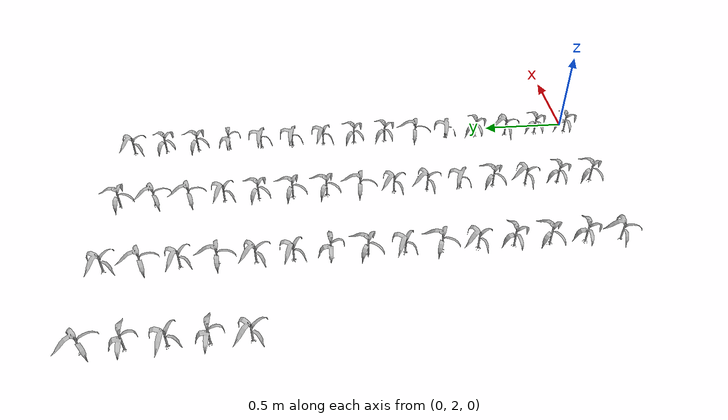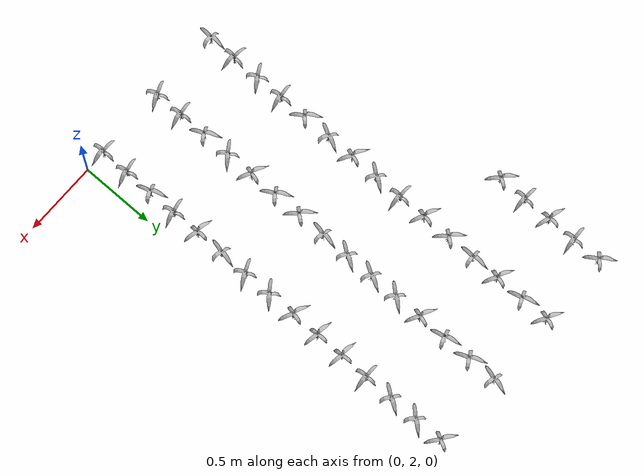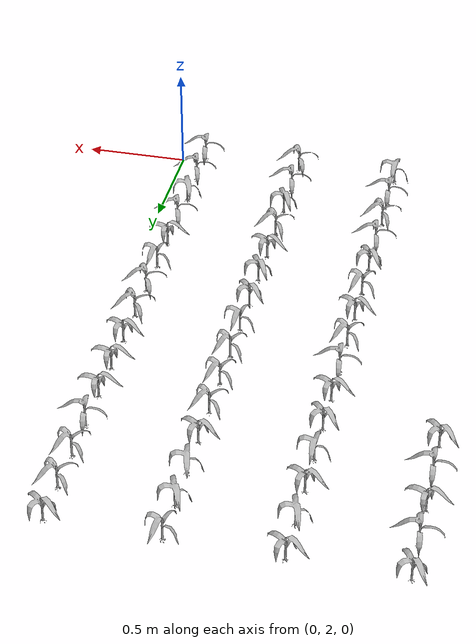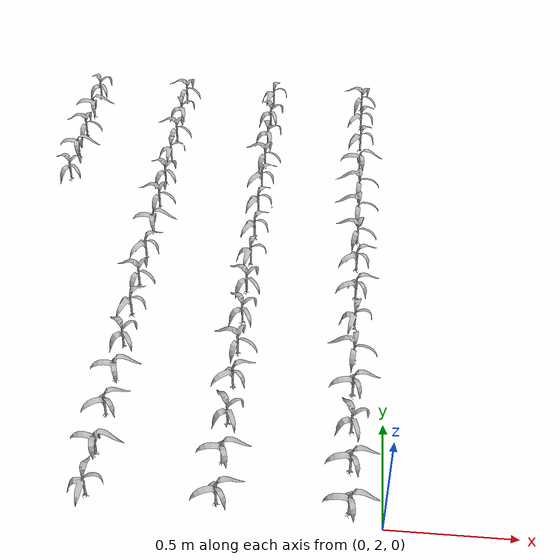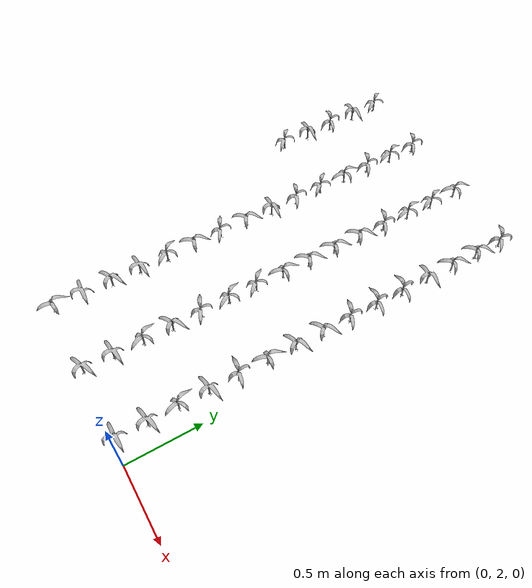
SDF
<sdf version="1.7">
 <world name="default">
  <model name="maize_-1.6134747127982658_3.9750000000000005">
   <static>1</static>
   <link name="link">
    <inertial>
     <mass>0.2</mass>
     <inertia>
      <ixx>0.166667</ixx>
      <ixy>0</ixy>
      <ixz>0</ixz>
      <iyy>0.166667</iyy>
      <iyz>0</iyz>
      <izz>0.166667</izz>
     </inertia>
    </inertial>
    <collision name="collision">
     <geometry><mesh><uri>model://corn_3/meshes/corn.dae</uri><scale>0.25 0.25 0.25</scale></mesh></geometry>
     <surface>
      <friction><ode><mu>0</mu><mu2>0</mu2></ode></friction>
      <contact><ode><kp>0</kp><kd>0</kd><max_vel>0</max_vel><min_depth>0.002</min_depth></ode></contact>
     </surface>
    </collision>
    <visual name="visual">
     <geometry><mesh><uri>model://corn_3/meshes/corn.dae</uri><scale>0.25 0.25 0.25</scale></mesh></geometry>
    </visual>
    <velocity_decay><linear>0</linear><angular>0</angular></velocity_decay>
   </link>
   <pose>-1.61347 3.975 0.05 0 -0 2.44939</pose>
  </model>
  <model name="maize_-1.6134747127982658_4.170000000000001">
   <static>1</static>
   <link name="link">
    <inertial>
     <mass>0.2</mass>
     <inertia>
      <ixx>0.166667</ixx>
      <ixy>0</ixy>
      <ixz>0</ixz>
      <iyy>0.166667</iyy>
      <iyz>0</iyz>
      <izz>0.166667</izz>
     </inertia>
    </inertial>
    <collision name="collision">
     <geometry><mesh><uri>model://corn_3/meshes/corn.dae</uri><scale>0.25 0.25 0.25</scale></mesh></geometry>
     <surface>
      <friction><ode><mu>0</mu><mu2>0</mu2></ode></friction>
      <contact><ode><kp>0</kp><kd>0</kd><max_vel>0</max_vel><min_depth>0.002</min_depth></ode></contact>
     </surface>
    </collision>
    <visual name="visual">
     <geometry><mesh><uri>model://corn_3/meshes/corn.dae</uri><scale>0.25 0.25 0.25</scale></mesh></geometry>
    </visual>
    <velocity_decay><linear>0</linear><angular>0</angular></velocity_decay>
   </link>
   <pose>-1.61347 4.17 0.05 0 -0 0.04831</pose>
  </model>
  <model name="maize_-1.6134747127982658_4.365000000000001">
   <static>1</static>
   <link name="link">
    <inertial>
     <mass>0.2</mass>
     <inertia>
      <ixx>0.166667</ixx>
      <ixy>0</ixy>
      <ixz>0</ixz>
      <iyy>0.166667</iyy>
      <iyz>0</iyz>
      <izz>0.166667</izz>
     </inertia>
    </inertial>
    <collision name="collision">
     <geometry><mesh><uri>model://corn_3/meshes/corn.dae</uri><scale>0.25 0.25 0.25</scale></mesh></geometry>
     <surface>
      <friction><ode><mu>0</mu><mu2>0</mu2></ode></friction>
      <contact><ode><kp>0</kp><kd>0</kd><max_vel>0</max_vel><min_depth>0.002</min_depth></ode></contact>
     </surface>
    </collision>
    <visual name="visual">
     <geometry><mesh><uri>model://corn_3/meshes/corn.dae</uri><scale>0.25 0.25 0.25</scale></mesh></geometry>
    </visual>
    <velocity_decay><linear>0</linear><angular>0</angular></velocity_decay>
   </link>
   <pose>-1.61347 4.365 0.05 0 -0 2.92814</pose>
  </model>
  <model name="maize_-1.6134747127982658_4.56">
   <static>1</static>
   <link name="link">
    <inertial>
     <mass>0.2</mass>
     <inertia>
      <ixx>0.166667</ixx>
      <ixy>0</ixy>
      <ixz>0</ixz>
      <iyy>0.166667</iyy>
      <iyz>0</iyz>
      <izz>0.166667</izz>
     </inertia>
    </inertial>
    <collision name="collision">
     <geometry><mesh><uri>model://corn_3/meshes/corn.dae</uri><scale>0.25 0.25 0.25</scale></mesh></geometry>
     <surface>
      <friction><ode><mu>0</mu><mu2>0</mu2></ode></friction>
      <contact><ode><kp>0</kp><kd>0</kd><max_vel>0</max_vel><min_depth>0.002</min_depth></ode></contact>
     </surface>
    </collision>
    <visual name="visual">
     <geometry><mesh><uri>model://corn_3/meshes/corn.dae</uri><scale>0.25 0.25 0.25</scale></mesh></geometry>
    </visual>
    <velocity_decay><linear>0</linear><angular>0</angular></velocity_decay>
   </link>
   <pose>-1.61347 4.56 0.05 0 -0 0.131172</pose>
  </model>
  <model name="maize_-1.6134747127982658_4.755">
   <static>1</static>
   <link name="link">
    <inertial>
     <mass>0.2</mass>
     <inertia>
      <ixx>0.166667</ixx>
      <ixy>0</ixy>
      <ixz>0</ixz>
      <iyy>0.166667</iyy>
      <iyz>0</iyz>
      <izz>0.166667</izz>
     </inertia>
    </inertial>
    <collision name="collision">
     <geometry><mesh><uri>model://corn_3/meshes/corn.dae</uri><scale>0.25 0.25 0.25</scale></mesh></geometry>
     <surface>
      <friction><ode><mu>0</mu><mu2>0</mu2></ode></friction>
      <contact><ode><kp>0</kp><kd>0</kd><max_vel>0</max_vel><min_depth>0.002</min_depth></ode></contact>
     </surface>
    </collision>
    <visual name="visual">
     <geometry><mesh><uri>model://corn_3/meshes/corn.dae</uri><scale>0.25 0.25 0.25</scale></mesh></geometry>
    </visual>
    <velocity_decay><linear>0</linear><angular>0</angular></velocity_decay>
   </link>
   <pose>-1.61347 4.755 0.05 0 -0 2.22805</pose>
  </model>
  <model name="maize_-1.1183337078909452_2.0250000000000004">
   <static>1</static>
   <link name="link">
    <inertial>
     <mass>0.2</mass>
     <inertia>
      <ixx>0.166667</ixx>
      <ixy>0</ixy>
      <ixz>0</ixz>
      <iyy>0.166667</iyy>
      <iyz>0</iyz>
      <izz>0.166667</izz>
     </inertia>
    </inertial>
    <collision name="collision">
     <geometry><mesh><uri>model://corn_3/meshes/corn.dae</uri><scale>0.25 0.25 0.25</scale></mesh></geometry>
     <surface>
      <friction><ode><mu>0</mu><mu2>0</mu2></ode></friction>
      <contact><ode><kp>0</kp><kd>0</kd><max_vel>0</max_vel><min_depth>0.002</min_depth></ode></contact>
     </surface>
    </collision>
    <visual name="visual">
     <geometry><mesh><uri>model://corn_3/meshes/corn.dae</uri><scale>0.25 0.25 0.25</scale></mesh></geometry>
    </visual>
    <velocity_decay><linear>0</linear><angular>0</angular></velocity_decay>
   </link>
   <pose>-1.11833 2.025 0.05 0 -0 1.59662</pose>
  </model>
  <model name="maize_-1.1183337078909452_2.2200000000000006">
   <static>1</static>
   <link name="link">
    <inertial>
     <mass>0.2</mass>
     <inertia>
      <ixx>0.166667</ixx>
      <ixy>0</ixy>
      <ixz>0</ixz>
      <iyy>0.166667</iyy>
      <iyz>0</iyz>
      <izz>0.166667</izz>
     </inertia>
    </inertial>
    <collision name="collision">
     <geometry><mesh><uri>model://corn_3/meshes/corn.dae</uri><scale>0.25 0.25 0.25</scale></mesh></geometry>
     <surface>
      <friction><ode><mu>0</mu><mu2>0</mu2></ode></friction>
      <contact><ode><kp>0</kp><kd>0</kd><max_vel>0</max_vel><min_depth>0.002</min_depth></ode></contact>
     </surface>
    </collision>
    <visual name="visual">
     <geometry><mesh><uri>model://corn_3/meshes/corn.dae</uri><scale>0.25 0.25 0.25</scale></mesh></geometry>
    </visual>
    <velocity_decay><linear>0</linear><angular>0</angular></velocity_decay>
   </link>
   <pose>-1.11833 2.22 0.05 0 -0 0.00149</pose>
  </model>
  <model name="maize_-1.1183337078909452_2.415">
   <static>1</static>
   <link name="link">
    <inertial>
     <mass>0.2</mass>
     <inertia>
      <ixx>0.166667</ixx>
      <ixy>0</ixy>
      <ixz>0</ixz>
      <iyy>0.166667</iyy>
      <iyz>0</iyz>
      <izz>0.166667</izz>
     </inertia>
    </inertial>
    <collision name="collision">
     <geometry><mesh><uri>model://corn_3/meshes/corn.dae</uri><scale>0.25 0.25 0.25</scale></mesh></geometry>
     <surface>
      <friction><ode><mu>0</mu><mu2>0</mu2></ode></friction>
      <contact><ode><kp>0</kp><kd>0</kd><max_vel>0</max_vel><min_depth>0.002</min_depth></ode></contact>
     </surface>
    </collision>
    <visual name="visual">
     <geometry><mesh><uri>model://corn_3/meshes/corn.dae</uri><scale>0.25 0.25 0.25</scale></mesh></geometry>
    </visual>
    <velocity_decay><linear>0</linear><angular>0</angular></velocity_decay>
   </link>
   <pose>-1.11833 2.415 0.05 0 -0 0.624737</pose>
  </model>
  <model name="maize_-1.1183337078909452_2.6100000000000003">
   <static>1</static>
   <link name="link">
    <inertial>
     <mass>0.2</mass>
     <inertia>
      <ixx>0.166667</ixx>
      <ixy>0</ixy>
      <ixz>0</ixz>
      <iyy>0.166667</iyy>
      <iyz>0</iyz>
      <izz>0.166667</izz>
     </inertia>
    </inertial>
    <collision name="collision">
     <geometry><mesh><uri>model://corn_3/meshes/corn.dae</uri><scale>0.25 0.25 0.25</scale></mesh></geometry>
     <surface>
      <friction><ode><mu>0</mu><mu2>0</mu2></ode></friction>
      <contact><ode><kp>0</kp><kd>0</kd><max_vel>0</max_vel><min_depth>0.002</min_depth></ode></contact>
     </surface>
    </collision>
    <visual name="visual">
     <geometry><mesh><uri>model://corn_3/meshes/corn.dae</uri><scale>0.25 0.25 0.25</scale></mesh></geometry>
    </visual>
    <velocity_decay><linear>0</linear><angular>0</angular></velocity_decay>
   </link>
   <pose>-1.11833 2.61 0.05 0 -0 0.20948</pose>
  </model>
  <model name="maize_-1.1183337078909452_2.8050000000000006">
   <static>1</static>
   <link name="link">
    <inertial>
     <mass>0.2</mass>
     <inertia>
      <ixx>0.166667</ixx>
      <ixy>0</ixy>
      <ixz>0</ixz>
      <iyy>0.166667</iyy>
      <iyz>0</iyz>
      <izz>0.166667</izz>
     </inertia>
    </inertial>
    <collision name="collision">
     <geometry><mesh><uri>model://corn_3/meshes/corn.dae</uri><scale>0.25 0.25 0.25</scale></mesh></geometry>
     <surface>
      <friction><ode><mu>0</mu><mu2>0</mu2></ode></friction>
      <contact><ode><kp>0</kp><kd>0</kd><max_vel>0</max_vel><min_depth>0.002</min_depth></ode></contact>
     </surface>
    </collision>
    <visual name="visual">
     <geometry><mesh><uri>model://corn_3/meshes/corn.dae</uri><scale>0.25 0.25 0.25</scale></mesh></geometry>
    </visual>
    <velocity_decay><linear>0</linear><angular>0</angular></velocity_decay>
   </link>
   <pose>-1.11833 2.805 0.05 0 -0 2.25345</pose>
  </model>
  <model name="maize_-1.1183337078909452_3.000000000000001">
   <static>1</static>
   <link name="link">
    <inertial>
     <mass>0.2</mass>
     <inertia>
      <ixx>0.166667</ixx>
      <ixy>0</ixy>
      <ixz>0</ixz>
      <iyy>0.166667</iyy>
      <iyz>0</iyz>
      <izz>0.166667</izz>
     </inertia>
    </inertial>
    <collision name="collision">
     <geometry><mesh><uri>model://corn_3/meshes/corn.dae</uri><scale>0.25 0.25 0.25</scale></mesh></geometry>
     <surface>
      <friction><ode><mu>0</mu><mu2>0</mu2></ode></friction>
      <contact><ode><kp>0</kp><kd>0</kd><max_vel>0</max_vel><min_depth>0.002</min_depth></ode></contact>
     </surface>
    </collision>
    <visual name="visual">
     <geometry><mesh><uri>model://corn_3/meshes/corn.dae</uri><scale>0.25 0.25 0.25</scale></mesh></geometry>
    </visual>
    <velocity_decay><linear>0</linear><angular>0</angular></velocity_decay>
   </link>
   <pose>-1.11833 3 0.05 0 -0 1.17662</pose>
  </model>
  <model name="maize_-1.1183337078909452_3.1950000000000003">
   <static>1</static>
   <link name="link">
    <inertial>
     <mass>0.2</mass>
     <inertia>
      <ixx>0.166667</ixx>
      <ixy>0</ixy>
      <ixz>0</ixz>
      <iyy>0.166667</iyy>
      <iyz>0</iyz>
      <izz>0.166667</izz>
     </inertia>
    </inertial>
    <collision name="collision">
     <geometry><mesh><uri>model://corn_3/meshes/corn.dae</uri><scale>0.25 0.25 0.25</scale></mesh></geometry>
     <surface>
      <friction><ode><mu>0</mu><mu2>0</mu2></ode></friction>
      <contact><ode><kp>0</kp><kd>0</kd><max_vel>0</max_vel><min_depth>0.002</min_depth></ode></contact>
     </surface>
    </collision>
    <visual name="visual">
     <geometry><mesh><uri>model://corn_3/meshes/corn.dae</uri><scale>0.25 0.25 0.25</scale></mesh></geometry>
    </visual>
    <velocity_decay><linear>0</linear><angular>0</angular></velocity_decay>
   </link>
   <pose>-1.11833 3.195 0.05 0 -0 2.7067</pose>
  </model>
  <model name="maize_-1.1183337078909452_3.3899999999999997">
   <static>1</static>
   <link name="link">
    <inertial>
     <mass>0.2</mass>
     <inertia>
      <ixx>0.166667</ixx>
      <ixy>0</ixy>
      <ixz>0</ixz>
      <iyy>0.166667</iyy>
      <iyz>0</iyz>
      <izz>0.166667</izz>
     </inertia>
    </inertial>
    <collision name="collision">
     <geometry><mesh><uri>model://corn_3/meshes/corn.dae</uri><scale>0.25 0.25 0.25</scale></mesh></geometry>
     <surface>
      <friction><ode><mu>0</mu><mu2>0</mu2></ode></friction>
      <contact><ode><kp>0</kp><kd>0</kd><max_vel>0</max_vel><min_depth>0.002</min_depth></ode></contact>
     </surface>
    </collision>
    <visual name="visual">
     <geometry><mesh><uri>model://corn_3/meshes/corn.dae</uri><scale>0.25 0.25 0.25</scale></mesh></geometry>
    </visual>
    <velocity_decay><linear>0</linear><angular>0</angular></velocity_decay>
   </link>
   <pose>-1.11833 3.39 0.05 0 -0 1.01007</pose>
  </model>
  <model name="maize_-1.1183337078909452_3.585">
   <static>1</static>
   <link name="link">
    <inertial>
     <mass>0.2</mass>
     <inertia>
      <ixx>0.166667</ixx>
      <ixy>0</ixy>
      <ixz>0</ixz>
      <iyy>0.166667</iyy>
      <iyz>0</iyz>
      <izz>0.166667</izz>
     </inertia>
    </inertial>
    <collision name="collision">
     <geometry><mesh><uri>model://corn_3/meshes/corn.dae</uri><scale>0.25 0.25 0.25</scale></mesh></geometry>
     <surface>
      <friction><ode><mu>0</mu><mu2>0</mu2></ode></friction>
      <contact><ode><kp>0</kp><kd>0</kd><max_vel>0</max_vel><min_depth>0.002</min_depth></ode></contact>
     </surface>
    </collision>
    <visual name="visual">
     <geometry><mesh><uri>model://corn_3/meshes/corn.dae</uri><scale>0.25 0.25 0.25</scale></mesh></geometry>
    </visual>
    <velocity_decay><linear>0</linear><angular>0</angular></velocity_decay>
   </link>
   <pose>-1.11833 3.585 0.05 0 -0 0.078755</pose>
  </model>
  <model name="maize_-1.1183337078909452_3.7800000000000002">
   <static>1</static>
   <link name="link">
    <inertial>
     <mass>0.2</mass>
     <inertia>
      <ixx>0.166667</ixx>
      <ixy>0</ixy>
      <ixz>0</ixz>
      <iyy>0.166667</iyy>
      <iyz>0</iyz>
      <izz>0.166667</izz>
     </inertia>
    </inertial>
    <collision name="collision">
     <geometry><mesh><uri>model://corn_3/meshes/corn.dae</uri><scale>0.25 0.25 0.25</scale></mesh></geometry>
     <surface>
      <friction><ode><mu>0</mu><mu2>0</mu2></ode></friction>
      <contact><ode><kp>0</kp><kd>0</kd><max_vel>0</max_vel><min_depth>0.002</min_depth></ode></contact>
     </surface>
    </collision>
    <visual name="visual">
     <geometry><mesh><uri>model://corn_3/meshes/corn.dae</uri><scale>0.25 0.25 0.25</scale></mesh></geometry>
    </visual>
    <velocity_decay><linear>0</linear><angular>0</angular></velocity_decay>
   </link>
   <pose>-1.11833 3.78 0.05 0 -0 2.78752</pose>
  </model>
  <model name="maize_-1.1183337078909452_3.9750000000000005">
   <static>1</static>
   <link name="link">
    <inertial>
     <mass>0.2</mass>
     <inertia>
      <ixx>0.166667</ixx>
      <ixy>0</ixy>
      <ixz>0</ixz>
      <iyy>0.166667</iyy>
      <iyz>0</iyz>
      <izz>0.166667</izz>
     </inertia>
    </inertial>
    <collision name="collision">
     <geometry><mesh><uri>model://corn_3/meshes/corn.dae</uri><scale>0.25 0.25 0.25</scale></mesh></geometry>
     <surface>
      <friction><ode><mu>0</mu><mu2>0</mu2></ode></friction>
      <contact><ode><kp>0</kp><kd>0</kd><max_vel>0</max_vel><min_depth>0.002</min_depth></ode></contact>
     </surface>
    </collision>
    <visual name="visual">
     <geometry><mesh><uri>model://corn_3/meshes/corn.dae</uri><scale>0.25 0.25 0.25</scale></mesh></geometry>
    </visual>
    <velocity_decay><linear>0</linear><angular>0</angular></velocity_decay>
   </link>
   <pose>-1.11833 3.975 0.05 0 -0 2.39003</pose>
  </model>
  <model name="maize_-1.1183337078909452_4.170000000000001">
   <static>1</static>
   <link name="link">
    <inertial>
     <mass>0.2</mass>
     <inertia>
      <ixx>0.166667</ixx>
      <ixy>0</ixy>
      <ixz>0</ixz>
      <iyy>0.166667</iyy>
      <iyz>0</iyz>
      <izz>0.166667</izz>
     </inertia>
    </inertial>
    <collision name="collision">
     <geometry><mesh><uri>model://corn_3/meshes/corn.dae</uri><scale>0.25 0.25 0.25</scale></mesh></geometry>
     <surface>
      <friction><ode><mu>0</mu><mu2>0</mu2></ode></friction>
      <contact><ode><kp>0</kp><kd>0</kd><max_vel>0</max_vel><min_depth>0.002</min_depth></ode></contact>
     </surface>
    </collision>
    <visual name="visual">
     <geometry><mesh><uri>model://corn_3/meshes/corn.dae</uri><scale>0.25 0.25 0.25</scale></mesh></geometry>
    </visual>
    <velocity_decay><linear>0</linear><angular>0</angular></velocity_decay>
   </link>
   <pose>-1.11833 4.17 0.05 0 -0 1.61946</pose>
  </model>
  <model name="maize_-1.1183337078909452_4.365000000000001">
   <static>1</static>
   <link name="link">
    <inertial>
     <mass>0.2</mass>
     <inertia>
      <ixx>0.166667</ixx>
      <ixy>0</ixy>
      <ixz>0</ixz>
      <iyy>0.166667</iyy>
      <iyz>0</iyz>
      <izz>0.166667</izz>
     </inertia>
    </inertial>
    <collision name="collision">
     <geometry><mesh><uri>model://corn_3/meshes/corn.dae</uri><scale>0.25 0.25 0.25</scale></mesh></geometry>
     <surface>
      <friction><ode><mu>0</mu><mu2>0</mu2></ode></friction>
      <contact><ode><kp>0</kp><kd>0</kd><max_vel>0</max_vel><min_depth>0.002</min_depth></ode></contact>
     </surface>
    </collision>
    <visual name="visual">
     <geometry><mesh><uri>model://corn_3/meshes/corn.dae</uri><scale>0.25 0.25 0.25</scale></mesh></geometry>
    </visual>
    <velocity_decay><linear>0</linear><angular>0</angular></velocity_decay>
   </link>
   <pose>-1.11833 4.365 0.05 0 -0 2.74053</pose>
  </model>
  <model name="maize_-1.1183337078909452_4.56">
   <static>1</static>
   <link name="link">
    <inertial>
     <mass>0.2</mass>
     <inertia>
      <ixx>0.166667</ixx>
      <ixy>0</ixy>
      <ixz>0</ixz>
      <iyy>0.166667</iyy>
      <iyz>0</iyz>
      <izz>0.166667</izz>
     </inertia>
    </inertial>
    <collision name="collision">
     <geometry><mesh><uri>model://corn_3/meshes/corn.dae</uri><scale>0.25 0.25 0.25</scale></mesh></geometry>
     <surface>
      <friction><ode><mu>0</mu><mu2>0</mu2></ode></friction>
      <contact><ode><kp>0</kp><kd>0</kd><max_vel>0</max_vel><min_depth>0.002</min_depth></ode></contact>
     </surface>
    </collision>
    <visual name="visual">
     <geometry><mesh><uri>model://corn_3/meshes/corn.dae</uri><scale>0.25 0.25 0.25</scale></mesh></geometry>
    </visual>
    <velocity_decay><linear>0</linear><angular>0</angular></velocity_decay>
   </link>
   <pose>-1.11833 4.56 0.05 0 -0 1.91813</pose>
  </model>
  <model name="maize_-1.1183337078909452_4.755">
   <static>1</static>
   <link name="link">
    <inertial>
     <mass>0.2</mass>
     <inertia>
      <ixx>0.166667</ixx>
      <ixy>0</ixy>
      <ixz>0</ixz>
      <iyy>0.166667</iyy>
      <iyz>0</iyz>
      <izz>0.166667</izz>
     </inertia>
    </inertial>
    <collision name="collision">
     <geometry><mesh><uri>model://corn_3/meshes/corn.dae</uri><scale>0.25 0.25 0.25</scale></mesh></geometry>
     <surface>
      <friction><ode><mu>0</mu><mu2>0</mu2></ode></friction>
      <contact><ode><kp>0</kp><kd>0</kd><max_vel>0</max_vel><min_depth>0.002</min_depth></ode></contact>
     </surface>
    </collision>
    <visual name="visual">
     <geometry><mesh><uri>model://corn_3/meshes/corn.dae</uri><scale>0.25 0.25 0.25</scale></mesh></geometry>
    </visual>
    <velocity_decay><linear>0</linear><angular>0</angular></velocity_decay>
   </link>
   <pose>-1.11833 4.755 0.05 0 -0 2.69034</pose>
  </model>
  <model name="maize_-0.6239370944114593_2.0250000000000004">
   <static>1</static>
   <link name="link">
    <inertial>
     <mass>0.2</mass>
     <inertia>
      <ixx>0.166667</ixx>
      <ixy>0</ixy>
      <ixz>0</ixz>
      <iyy>0.166667</iyy>
      <iyz>0</iyz>
      <izz>0.166667</izz>
     </inertia>
    </inertial>
    <collision name="collision">
     <geometry><mesh><uri>model://corn_3/meshes/corn.dae</uri><scale>0.25 0.25 0.25</scale></mesh></geometry>
     <surface>
      <friction><ode><mu>0</mu><mu2>0</mu2></ode></friction>
      <contact><ode><kp>0</kp><kd>0</kd><max_vel>0</max_vel><min_depth>0.002</min_depth></ode></contact>
     </surface>
    </collision>
    <visual name="visual">
     <geometry><mesh><uri>model://corn_3/meshes/corn.dae</uri><scale>0.25 0.25 0.25</scale></mesh></geometry>
    </visual>
    <velocity_decay><linear>0</linear><angular>0</angular></velocity_decay>
   </link>
   <pose>-0.623937 2.025 0.05 0 -0 0.490631</pose>
  </model>
  <model name="maize_-0.6239370944114593_2.2200000000000006">
   <static>1</static>
   <link name="link">
    <inertial>
     <mass>0.2</mass>
     <inertia>
      <ixx>0.166667</ixx>
      <ixy>0</ixy>
      <ixz>0</ixz>
      <iyy>0.166667</iyy>
      <iyz>0</iyz>
      <izz>0.166667</izz>
     </inertia>
    </inertial>
    <collision name="collision">
     <geometry><mesh><uri>model://corn_3/meshes/corn.dae</uri><scale>0.25 0.25 0.25</scale></mesh></geometry>
     <surface>
      <friction><ode><mu>0</mu><mu2>0</mu2></ode></friction>
      <contact><ode><kp>0</kp><kd>0</kd><max_vel>0</max_vel><min_depth>0.002</min_depth></ode></contact>
     </surface>
    </collision>
    <visual name="visual">
     <geometry><mesh><uri>model://corn_3/meshes/corn.dae</uri><scale>0.25 0.25 0.25</scale></mesh></geometry>
    </visual>
    <velocity_decay><linear>0</linear><angular>0</angular></velocity_decay>
   </link>
   <pose>-0.623937 2.22 0.05 0 -0 0.224253</pose>
  </model>
  <model name="maize_-0.6239370944114593_2.415">
   <static>1</static>
   <link name="link">
    <inertial>
     <mass>0.2</mass>
     <inertia>
      <ixx>0.166667</ixx>
      <ixy>0</ixy>
      <ixz>0</ixz>
      <iyy>0.166667</iyy>
      <iyz>0</iyz>
      <izz>0.166667</izz>
     </inertia>
    </inertial>
    <collision name="collision">
     <geometry><mesh><uri>model://corn_3/meshes/corn.dae</uri><scale>0.25 0.25 0.25</scale></mesh></geometry>
     <surface>
      <friction><ode><mu>0</mu><mu2>0</mu2></ode></friction>
      <contact><ode><kp>0</kp><kd>0</kd><max_vel>0</max_vel><min_depth>0.002</min_depth></ode></contact>
     </surface>
    </collision>
    <visual name="visual">
     <geometry><mesh><uri>model://corn_3/meshes/corn.dae</uri><scale>0.25 0.25 0.25</scale></mesh></geometry>
    </visual>
    <velocity_decay><linear>0</linear><angular>0</angular></velocity_decay>
   </link>
   <pose>-0.623937 2.415 0.05 0 -0 2.08722</pose>
  </model>
  <model name="maize_-0.6239370944114593_2.6100000000000003">
   <static>1</static>
   <link name="link">
    <inertial>
     <mass>0.2</mass>
     <inertia>
      <ixx>0.166667</ixx>
      <ixy>0</ixy>
      <ixz>0</ixz>
      <iyy>0.166667</iyy>
      <iyz>0</iyz>
      <izz>0.166667</izz>
     </inertia>
    </inertial>
    <collision name="collision">
     <geometry><mesh><uri>model://corn_3/meshes/corn.dae</uri><scale>0.25 0.25 0.25</scale></mesh></geometry>
     <surface>
      <friction><ode><mu>0</mu><mu2>0</mu2></ode></friction>
      <contact><ode><kp>0</kp><kd>0</kd><max_vel>0</max_vel><min_depth>0.002</min_depth></ode></contact>
     </surface>
    </collision>
    <visual name="visual">
     <geometry><mesh><uri>model://corn_3/meshes/corn.dae</uri><scale>0.25 0.25 0.25</scale></mesh></geometry>
    </visual>
    <velocity_decay><linear>0</linear><angular>0</angular></velocity_decay>
   </link>
   <pose>-0.623937 2.61 0.05 0 -0 0.702721</pose>
  </model>
  <model name="maize_-0.6239370944114593_2.8050000000000006">
   <static>1</static>
   <link name="link">
    <inertial>
     <mass>0.2</mass>
     <inertia>
      <ixx>0.166667</ixx>
      <ixy>0</ixy>
      <ixz>0</ixz>
      <iyy>0.166667</iyy>
      <iyz>0</iyz>
      <izz>0.166667</izz>
     </inertia>
    </inertial>
    <collision name="collision">
     <geometry><mesh><uri>model://corn_3/meshes/corn.dae</uri><scale>0.25 0.25 0.25</scale></mesh></geometry>
     <surface>
      <friction><ode><mu>0</mu><mu2>0</mu2></ode></friction>
      <contact><ode><kp>0</kp><kd>0</kd><max_vel>0</max_vel><min_depth>0.002</min_depth></ode></contact>
     </surface>
    </collision>
    <visual name="visual">
     <geometry><mesh><uri>model://corn_3/meshes/corn.dae</uri><scale>0.25 0.25 0.25</scale></mesh></geometry>
    </visual>
    <velocity_decay><linear>0</linear><angular>0</angular></velocity_decay>
   </link>
   <pose>-0.623937 2.805 0.05 0 -0 2.77363</pose>
  </model>
  <model name="maize_-0.6239370944114593_3.000000000000001">
   <static>1</static>
   <link name="link">
    <inertial>
     <mass>0.2</mass>
     <inertia>
      <ixx>0.166667</ixx>
      <ixy>0</ixy>
      <ixz>0</ixz>
      <iyy>0.166667</iyy>
      <iyz>0</iyz>
      <izz>0.166667</izz>
     </inertia>
    </inertial>
    <collision name="collision">
     <geometry><mesh><uri>model://corn_3/meshes/corn.dae</uri><scale>0.25 0.25 0.25</scale></mesh></geometry>
     <surface>
      <friction><ode><mu>0</mu><mu2>0</mu2></ode></friction>
      <contact><ode><kp>0</kp><kd>0</kd><max_vel>0</max_vel><min_depth>0.002</min_depth></ode></contact>
     </surface>
    </collision>
    <visual name="visual">
     <geometry><mesh><uri>model://corn_3/meshes/corn.dae</uri><scale>0.25 0.25 0.25</scale></mesh></geometry>
    </visual>
    <velocity_decay><linear>0</linear><angular>0</angular></velocity_decay>
   </link>
   <pose>-0.623937 3 0.05 0 -0 2.16091</pose>
  </model>
  <model name="maize_-0.6239370944114593_3.1950000000000003">
   <static>1</static>
   <link name="link">
    <inertial>
     <mass>0.2</mass>
     <inertia>
      <ixx>0.166667</ixx>
      <ixy>0</ixy>
      <ixz>0</ixz>
      <iyy>0.166667</iyy>
      <iyz>0</iyz>
      <izz>0.166667</izz>
     </inertia>
    </inertial>
    <collision name="collision">
     <geometry><mesh><uri>model://corn_3/meshes/corn.dae</uri><scale>0.25 0.25 0.25</scale></mesh></geometry>
     <surface>
      <friction><ode><mu>0</mu><mu2>0</mu2></ode></friction>
      <contact><ode><kp>0</kp><kd>0</kd><max_vel>0</max_vel><min_depth>0.002</min_depth></ode></contact>
     </surface>
    </collision>
    <visual name="visual">
     <geometry><mesh><uri>model://corn_3/meshes/corn.dae</uri><scale>0.25 0.25 0.25</scale></mesh></geometry>
    </visual>
    <velocity_decay><linear>0</linear><angular>0</angular></velocity_decay>
   </link>
   <pose>-0.623937 3.195 0.05 0 -0 2.3969</pose>
  </model>
  <model name="maize_-0.6239370944114593_3.3899999999999997">
   <static>1</static>
   <link name="link">
    <inertial>
     <mass>0.2</mass>
     <inertia>
      <ixx>0.166667</ixx>
      <ixy>0</ixy>
      <ixz>0</ixz>
      <iyy>0.166667</iyy>
      <iyz>0</iyz>
      <izz>0.166667</izz>
     </inertia>
    </inertial>
    <collision name="collision">
     <geometry><mesh><uri>model://corn_3/meshes/corn.dae</uri><scale>0.25 0.25 0.25</scale></mesh></geometry>
     <surface>
      <friction><ode><mu>0</mu><mu2>0</mu2></ode></friction>
      <contact><ode><kp>0</kp><kd>0</kd><max_vel>0</max_vel><min_depth>0.002</min_depth></ode></contact>
     </surface>
    </collision>
    <visual name="visual">
     <geometry><mesh><uri>model://corn_3/meshes/corn.dae</uri><scale>0.25 0.25 0.25</scale></mesh></geometry>
    </visual>
    <velocity_decay><linear>0</linear><angular>0</angular></velocity_decay>
   </link>
   <pose>-0.623937 3.39 0.05 0 -0 1.44744</pose>
  </model>
  <model name="maize_-0.6239370944114593_3.585">
   <static>1</static>
   <link name="link">
    <inertial>
     <mass>0.2</mass>
     <inertia>
      <ixx>0.166667</ixx>
      <ixy>0</ixy>
      <ixz>0</ixz>
      <iyy>0.166667</iyy>
      <iyz>0</iyz>
      <izz>0.166667</izz>
     </inertia>
    </inertial>
    <collision name="collision">
     <geometry><mesh><uri>model://corn_3/meshes/corn.dae</uri><scale>0.25 0.25 0.25</scale></mesh></geometry>
     <surface>
      <friction><ode><mu>0</mu><mu2>0</mu2></ode></friction>
      <contact><ode><kp>0</kp><kd>0</kd><max_vel>0</max_vel><min_depth>0.002</min_depth></ode></contact>
     </surface>
    </collision>
    <visual name="visual">
     <geometry><mesh><uri>model://corn_3/meshes/corn.dae</uri><scale>0.25 0.25 0.25</scale></mesh></geometry>
    </visual>
    <velocity_decay><linear>0</linear><angular>0</angular></velocity_decay>
   </link>
   <pose>-0.623937 3.585 0.05 0 -0 1.05499</pose>
  </model>
  <model name="maize_-0.6239370944114593_3.7800000000000002">
   <static>1</static>
   <link name="link">
    <inertial>
     <mass>0.2</mass>
     <inertia>
      <ixx>0.166667</ixx>
      <ixy>0</ixy>
      <ixz>0</ixz>
      <iyy>0.166667</iyy>
      <iyz>0</iyz>
      <izz>0.166667</izz>
     </inertia>
    </inertial>
    <collision name="collision">
     <geometry><mesh><uri>model://corn_3/meshes/corn.dae</uri><scale>0.25 0.25 0.25</scale></mesh></geometry>
     <surface>
      <friction><ode><mu>0</mu><mu2>0</mu2></ode></friction>
      <contact><ode><kp>0</kp><kd>0</kd><max_vel>0</max_vel><min_depth>0.002</min_depth></ode></contact>
     </surface>
    </collision>
    <visual name="visual">
     <geometry><mesh><uri>model://corn_3/meshes/corn.dae</uri><scale>0.25 0.25 0.25</scale></mesh></geometry>
    </visual>
    <velocity_decay><linear>0</linear><angular>0</angular></velocity_decay>
   </link>
   <pose>-0.623937 3.78 0.05 0 -0 1.12821</pose>
  </model>
  <model name="maize_-0.6239370944114593_3.9750000000000005">
   <static>1</static>
   <link name="link">
    <inertial>
     <mass>0.2</mass>
     <inertia>
      <ixx>0.166667</ixx>
      <ixy>0</ixy>
      <ixz>0</ixz>
      <iyy>0.166667</iyy>
      <iyz>0</iyz>
      <izz>0.166667</izz>
     </inertia>
    </inertial>
    <collision name="collision">
     <geometry><mesh><uri>model://corn_3/meshes/corn.dae</uri><scale>0.25 0.25 0.25</scale></mesh></geometry>
     <surface>
      <friction><ode><mu>0</mu><mu2>0</mu2></ode></friction>
      <contact><ode><kp>0</kp><kd>0</kd><max_vel>0</max_vel><min_depth>0.002</min_depth></ode></contact>
     </surface>
    </collision>
    <visual name="visual">
     <geometry><mesh><uri>model://corn_3/meshes/corn.dae</uri><scale>0.25 0.25 0.25</scale></mesh></geometry>
    </visual>
    <velocity_decay><linear>0</linear><angular>0</angular></velocity_decay>
   </link>
   <pose>-0.623937 3.975 0.05 0 -0 0.948451</pose>
  </model>
  <model name="maize_-0.6239370944114593_4.170000000000001">
   <static>1</static>
   <link name="link">
    <inertial>
     <mass>0.2</mass>
     <inertia>
      <ixx>0.166667</ixx>
      <ixy>0</ixy>
      <ixz>0</ixz>
      <iyy>0.166667</iyy>
      <iyz>0</iyz>
      <izz>0.166667</izz>
     </inertia>
    </inertial>
    <collision name="collision">
     <geometry><mesh><uri>model://corn_3/meshes/corn.dae</uri><scale>0.25 0.25 0.25</scale></mesh></geometry>
     <surface>
      <friction><ode><mu>0</mu><mu2>0</mu2></ode></friction>
      <contact><ode><kp>0</kp><kd>0</kd><max_vel>0</max_vel><min_depth>0.002</min_depth></ode></contact>
     </surface>
    </collision>
    <visual name="visual">
     <geometry><mesh><uri>model://corn_3/meshes/corn.dae</uri><scale>0.25 0.25 0.25</scale></mesh></geometry>
    </visual>
    <velocity_decay><linear>0</linear><angular>0</angular></velocity_decay>
   </link>
   <pose>-0.623937 4.17 0.05 0 -0 2.73747</pose>
  </model>
  <model name="maize_-0.6239370944114593_4.365000000000001">
   <static>1</static>
   <link name="link">
    <inertial>
     <mass>0.2</mass>
     <inertia>
      <ixx>0.166667</ixx>
      <ixy>0</ixy>
      <ixz>0</ixz>
      <iyy>0.166667</iyy>
      <iyz>0</iyz>
      <izz>0.166667</izz>
     </inertia>
    </inertial>
    <collision name="collision">
     <geometry><mesh><uri>model://corn_3/meshes/corn.dae</uri><scale>0.25 0.25 0.25</scale></mesh></geometry>
     <surface>
      <friction><ode><mu>0</mu><mu2>0</mu2></ode></friction>
      <contact><ode><kp>0</kp><kd>0</kd><max_vel>0</max_vel><min_depth>0.002</min_depth></ode></contact>
     </surface>
    </collision>
    <visual name="visual">
     <geometry><mesh><uri>model://corn_3/meshes/corn.dae</uri><scale>0.25 0.25 0.25</scale></mesh></geometry>
    </visual>
    <velocity_decay><linear>0</linear><angular>0</angular></velocity_decay>
   </link>
   <pose>-0.623937 4.365 0.05 0 -0 1.86523</pose>
  </model>
  <model name="maize_-0.6239370944114593_4.56">
   <static>1</static>
   <link name="link">
    <inertial>
     <mass>0.2</mass>
     <inertia>
      <ixx>0.166667</ixx>
      <ixy>0</ixy>
      <ixz>0</ixz>
      <iyy>0.166667</iyy>
      <iyz>0</iyz>
      <izz>0.166667</izz>
     </inertia>
    </inertial>
    <collision name="collision">
     <geometry><mesh><uri>model://corn_3/meshes/corn.dae</uri><scale>0.25 0.25 0.25</scale></mesh></geometry>
     <surface>
      <friction><ode><mu>0</mu><mu2>0</mu2></ode></friction>
      <contact><ode><kp>0</kp><kd>0</kd><max_vel>0</max_vel><min_depth>0.002</min_depth></ode></contact>
     </surface>
    </collision>
    <visual name="visual">
     <geometry><mesh><uri>model://corn_3/meshes/corn.dae</uri><scale>0.25 0.25 0.25</scale></mesh></geometry>
    </visual>
    <velocity_decay><linear>0</linear><angular>0</angular></velocity_decay>
   </link>
   <pose>-0.623937 4.56 0.05 0 -0 2.03396</pose>
  </model>
  <model name="maize_-0.6239370944114593_4.755">
   <static>1</static>
   <link name="link">
    <inertial>
     <mass>0.2</mass>
     <inertia>
      <ixx>0.166667</ixx>
      <ixy>0</ixy>
      <ixz>0</ixz>
      <iyy>0.166667</iyy>
      <iyz>0</iyz>
      <izz>0.166667</izz>
     </inertia>
    </inertial>
    <collision name="collision">
     <geometry><mesh><uri>model://corn_3/meshes/corn.dae</uri><scale>0.25 0.25 0.25</scale></mesh></geometry>
     <surface>
      <friction><ode><mu>0</mu><mu2>0</mu2></ode></friction>
      <contact><ode><kp>0</kp><kd>0</kd><max_vel>0</max_vel><min_depth>0.002</min_depth></ode></contact>
     </surface>
    </collision>
    <visual name="visual">
     <geometry><mesh><uri>model://corn_3/meshes/corn.dae</uri><scale>0.25 0.25 0.25</scale></mesh></geometry>
    </visual>
    <velocity_decay><linear>0</linear><angular>0</angular></velocity_decay>
   </link>
   <pose>-0.623937 4.755 0.05 0 -0 1.35657</pose>
  </model>
  <model name="maize_-0.130284034289482_2.0250000000000004">
   <static>1</static>
   <link name="link">
    <inertial>
     <mass>0.2</mass>
     <inertia>
      <ixx>0.166667</ixx>
      <ixy>0</ixy>
      <ixz>0</ixz>
      <iyy>0.166667</iyy>
      <iyz>0</iyz>
      <izz>0.166667</izz>
     </inertia>
    </inertial>
    <collision name="collision">
     <geometry><mesh><uri>model://corn_3/meshes/corn.dae</uri><scale>0.25 0.25 0.25</scale></mesh></geometry>
     <surface>
      <friction><ode><mu>0</mu><mu2>0</mu2></ode></friction>
      <contact><ode><kp>0</kp><kd>0</kd><max_vel>0</max_vel><min_depth>0.002</min_depth></ode></contact>
     </surface>
    </collision>
    <visual name="visual">
     <geometry><mesh><uri>model://corn_3/meshes/corn.dae</uri><scale>0.25 0.25 0.25</scale></mesh></geometry>
    </visual>
    <velocity_decay><linear>0</linear><angular>0</angular></velocity_decay>
   </link>
   <pose>-0.130284 2.025 0.05 0 -0 0.106279</pose>
  </model>
  <model name="maize_-0.130284034289482_2.2200000000000006">
   <static>1</static>
   <link name="link">
    <inertial>
     <mass>0.2</mass>
     <inertia>
      <ixx>0.166667</ixx>
      <ixy>0</ixy>
      <ixz>0</ixz>
      <iyy>0.166667</iyy>
      <iyz>0</iyz>
      <izz>0.166667</izz>
     </inertia>
    </inertial>
    <collision name="collision">
     <geometry><mesh><uri>model://corn_3/meshes/corn.dae</uri><scale>0.25 0.25 0.25</scale></mesh></geometry>
     <surface>
      <friction><ode><mu>0</mu><mu2>0</mu2></ode></friction>
      <contact><ode><kp>0</kp><kd>0</kd><max_vel>0</max_vel><min_depth>0.002</min_depth></ode></contact>
     </surface>
    </collision>
    <visual name="visual">
     <geometry><mesh><uri>model://corn_3/meshes/corn.dae</uri><scale>0.25 0.25 0.25</scale></mesh></geometry>
    </visual>
    <velocity_decay><linear>0</linear><angular>0</angular></velocity_decay>
   </link>
   <pose>-0.130284 2.22 0.05 0 -0 0.301946</pose>
  </model>
  <model name="maize_-0.130284034289482_2.415">
   <static>1</static>
   <link name="link">
    <inertial>
     <mass>0.2</mass>
     <inertia>
      <ixx>0.166667</ixx>
      <ixy>0</ixy>
      <ixz>0</ixz>
      <iyy>0.166667</iyy>
      <iyz>0</iyz>
      <izz>0.166667</izz>
     </inertia>
    </inertial>
    <collision name="collision">
     <geometry><mesh><uri>model://corn_3/meshes/corn.dae</uri><scale>0.25 0.25 0.25</scale></mesh></geometry>
     <surface>
      <friction><ode><mu>0</mu><mu2>0</mu2></ode></friction>
      <contact><ode><kp>0</kp><kd>0</kd><max_vel>0</max_vel><min_depth>0.002</min_depth></ode></contact>
     </surface>
    </collision>
    <visual name="visual">
     <geometry><mesh><uri>model://corn_3/meshes/corn.dae</uri><scale>0.25 0.25 0.25</scale></mesh></geometry>
    </visual>
    <velocity_decay><linear>0</linear><angular>0</angular></velocity_decay>
   </link>
   <pose>-0.130284 2.415 0.05 0 -0 1.96491</pose>
  </model>
  <model name="maize_-0.130284034289482_2.6100000000000003">
   <static>1</static>
   <link name="link">
    <inertial>
     <mass>0.2</mass>
     <inertia>
      <ixx>0.166667</ixx>
      <ixy>0</ixy>
      <ixz>0</ixz>
      <iyy>0.166667</iyy>
      <iyz>0</iyz>
      <izz>0.166667</izz>
     </inertia>
    </inertial>
    <collision name="collision">
     <geometry><mesh><uri>model://corn_3/meshes/corn.dae</uri><scale>0.25 0.25 0.25</scale></mesh></geometry>
     <surface>
      <friction><ode><mu>0</mu><mu2>0</mu2></ode></friction>
      <contact><ode><kp>0</kp><kd>0</kd><max_vel>0</max_vel><min_depth>0.002</min_depth></ode></contact>
     </surface>
    </collision>
    <visual name="visual">
     <geometry><mesh><uri>model://corn_3/meshes/corn.dae</uri><scale>0.25 0.25 0.25</scale></mesh></geometry>
    </visual>
    <velocity_decay><linear>0</linear><angular>0</angular></velocity_decay>
   </link>
   <pose>-0.130284 2.61 0.05 0 -0 0.308323</pose>
  </model>
  <model name="maize_-0.130284034289482_2.8050000000000006">
   <static>1</static>
   <link name="link">
    <inertial>
     <mass>0.2</mass>
     <inertia>
      <ixx>0.166667</ixx>
      <ixy>0</ixy>
      <ixz>0</ixz>
      <iyy>0.166667</iyy>
      <iyz>0</iyz>
      <izz>0.166667</izz>
     </inertia>
    </inertial>
    <collision name="collision">
     <geometry><mesh><uri>model://corn_3/meshes/corn.dae</uri><scale>0.25 0.25 0.25</scale></mesh></geometry>
     <surface>
      <friction><ode><mu>0</mu><mu2>0</mu2></ode></friction>
      <contact><ode><kp>0</kp><kd>0</kd><max_vel>0</max_vel><min_depth>0.002</min_depth></ode></contact>
     </surface>
    </collision>
    <visual name="visual">
     <geometry><mesh><uri>model://corn_3/meshes/corn.dae</uri><scale>0.25 0.25 0.25</scale></mesh></geometry>
    </visual>
    <velocity_decay><linear>0</linear><angular>0</angular></velocity_decay>
   </link>
   <pose>-0.130284 2.805 0.05 0 -0 3.0258</pose>
  </model>
  <model name="maize_-0.130284034289482_3.000000000000001">
   <static>1</static>
   <link name="link">
    <inertial>
     <mass>0.2</mass>
     <inertia>
      <ixx>0.166667</ixx>
      <ixy>0</ixy>
      <ixz>0</ixz>
      <iyy>0.166667</iyy>
      <iyz>0</iyz>
      <izz>0.166667</izz>
     </inertia>
    </inertial>
    <collision name="collision">
     <geometry><mesh><uri>model://corn_3/meshes/corn.dae</uri><scale>0.25 0.25 0.25</scale></mesh></geometry>
     <surface>
      <friction><ode><mu>0</mu><mu2>0</mu2></ode></friction>
      <contact><ode><kp>0</kp><kd>0</kd><max_vel>0</max_vel><min_depth>0.002</min_depth></ode></contact>
     </surface>
    </collision>
    <visual name="visual">
     <geometry><mesh><uri>model://corn_3/meshes/corn.dae</uri><scale>0.25 0.25 0.25</scale></mesh></geometry>
    </visual>
    <velocity_decay><linear>0</linear><angular>0</angular></velocity_decay>
   </link>
   <pose>-0.130284 3 0.05 0 -0 1.40568</pose>
  </model>
  <model name="maize_-0.130284034289482_3.1950000000000003">
   <static>1</static>
   <link name="link">
    <inertial>
     <mass>0.2</mass>
     <inertia>
      <ixx>0.166667</ixx>
      <ixy>0</ixy>
      <ixz>0</ixz>
      <iyy>0.166667</iyy>
      <iyz>0</iyz>
      <izz>0.166667</izz>
     </inertia>
    </inertial>
    <collision name="collision">
     <geometry><mesh><uri>model://corn_3/meshes/corn.dae</uri><scale>0.25 0.25 0.25</scale></mesh></geometry>
     <surface>
      <friction><ode><mu>0</mu><mu2>0</mu2></ode></friction>
      <contact><ode><kp>0</kp><kd>0</kd><max_vel>0</max_vel><min_depth>0.002</min_depth></ode></contact>
     </surface>
    </collision>
    <visual name="visual">
     <geometry><mesh><uri>model://corn_3/meshes/corn.dae</uri><scale>0.25 0.25 0.25</scale></mesh></geometry>
    </visual>
    <velocity_decay><linear>0</linear><angular>0</angular></velocity_decay>
   </link>
   <pose>-0.130284 3.195 0.05 0 -0 0.531886</pose>
  </model>
  <model name="maize_-0.130284034289482_3.3899999999999997">
   <static>1</static>
   <link name="link">
    <inertial>
     <mass>0.2</mass>
     <inertia>
      <ixx>0.166667</ixx>
      <ixy>0</ixy>
      <ixz>0</ixz>
      <iyy>0.166667</iyy>
      <iyz>0</iyz>
      <izz>0.166667</izz>
     </inertia>
    </inertial>
    <collision name="collision">
     <geometry><mesh><uri>model://corn_3/meshes/corn.dae</uri><scale>0.25 0.25 0.25</scale></mesh></geometry>
     <surface>
      <friction><ode><mu>0</mu><mu2>0</mu2></ode></friction>
      <contact><ode><kp>0</kp><kd>0</kd><max_vel>0</max_vel><min_depth>0.002</min_depth></ode></contact>
     </surface>
    </collision>
    <visual name="visual">
     <geometry><mesh><uri>model://corn_3/meshes/corn.dae</uri><scale>0.25 0.25 0.25</scale></mesh></geometry>
    </visual>
    <velocity_decay><linear>0</linear><angular>0</angular></velocity_decay>
   </link>
   <pose>-0.130284 3.39 0.05 0 -0 0.718707</pose>
  </model>
  <model name="maize_-0.130284034289482_3.585">
   <static>1</static>
   <link name="link">
    <inertial>
     <mass>0.2</mass>
     <inertia>
      <ixx>0.166667</ixx>
      <ixy>0</ixy>
      <ixz>0</ixz>
      <iyy>0.166667</iyy>
      <iyz>0</iyz>
      <izz>0.166667</izz>
     </inertia>
    </inertial>
    <collision name="collision">
     <geometry><mesh><uri>model://corn_3/meshes/corn.dae</uri><scale>0.25 0.25 0.25</scale></mesh></geometry>
     <surface>
      <friction><ode><mu>0</mu><mu2>0</mu2></ode></friction>
      <contact><ode><kp>0</kp><kd>0</kd><max_vel>0</max_vel><min_depth>0.002</min_depth></ode></contact>
     </surface>
    </collision>
    <visual name="visual">
     <geometry><mesh><uri>model://corn_3/meshes/corn.dae</uri><scale>0.25 0.25 0.25</scale></mesh></geometry>
    </visual>
    <velocity_decay><linear>0</linear><angular>0</angular></velocity_decay>
   </link>
   <pose>-0.130284 3.585 0.05 0 -0 2.80383</pose>
  </model>
  <model name="maize_-0.130284034289482_3.7800000000000002">
   <static>1</static>
   <link name="link">
    <inertial>
     <mass>0.2</mass>
     <inertia>
      <ixx>0.166667</ixx>
      <ixy>0</ixy>
      <ixz>0</ixz>
      <iyy>0.166667</iyy>
      <iyz>0</iyz>
      <izz>0.166667</izz>
     </inertia>
    </inertial>
    <collision name="collision">
     <geometry><mesh><uri>model://corn_3/meshes/corn.dae</uri><scale>0.25 0.25 0.25</scale></mesh></geometry>
     <surface>
      <friction><ode><mu>0</mu><mu2>0</mu2></ode></friction>
      <contact><ode><kp>0</kp><kd>0</kd><max_vel>0</max_vel><min_depth>0.002</min_depth></ode></contact>
     </surface>
    </collision>
    <visual name="visual">
     <geometry><mesh><uri>model://corn_3/meshes/corn.dae</uri><scale>0.25 0.25 0.25</scale></mesh></geometry>
    </visual>
    <velocity_decay><linear>0</linear><angular>0</angular></velocity_decay>
   </link>
   <pose>-0.130284 3.78 0.05 0 -0 3.05877</pose>
  </model>
  <model name="maize_-0.130284034289482_3.9750000000000005">
   <static>1</static>
   <link name="link">
    <inertial>
     <mass>0.2</mass>
     <inertia>
      <ixx>0.166667</ixx>
      <ixy>0</ixy>
      <ixz>0</ixz>
      <iyy>0.166667</iyy>
      <iyz>0</iyz>
      <izz>0.166667</izz>
     </inertia>
    </inertial>
    <collision name="collision">
     <geometry><mesh><uri>model://corn_3/meshes/corn.dae</uri><scale>0.25 0.25 0.25</scale></mesh></geometry>
     <surface>
      <friction><ode><mu>0</mu><mu2>0</mu2></ode></friction>
      <contact><ode><kp>0</kp><kd>0</kd><max_vel>0</max_vel><min_depth>0.002</min_depth></ode></contact>
     </surface>
    </collision>
    <visual name="visual">
     <geometry><mesh><uri>model://corn_3/meshes/corn.dae</uri><scale>0.25 0.25 0.25</scale></mesh></geometry>
    </visual>
    <velocity_decay><linear>0</linear><angular>0</angular></velocity_decay>
   </link>
   <pose>-0.130284 3.975 0.05 0 -0 3.08965</pose>
  </model>
  <model name="maize_-0.130284034289482_4.170000000000001">
   <static>1</static>
   <link name="link">
    <inertial>
     <mass>0.2</mass>
     <inertia>
      <ixx>0.166667</ixx>
      <ixy>0</ixy>
      <ixz>0</ixz>
      <iyy>0.166667</iyy>
      <iyz>0</iyz>
      <izz>0.166667</izz>
     </inertia>
    </inertial>
    <collision name="collision">
     <geometry><mesh><uri>model://corn_3/meshes/corn.dae</uri><scale>0.25 0.25 0.25</scale></mesh></geometry>
     <surface>
      <friction><ode><mu>0</mu><mu2>0</mu2></ode></friction>
      <contact><ode><kp>0</kp><kd>0</kd><max_vel>0</max_vel><min_depth>0.002</min_depth></ode></contact>
     </surface>
    </collision>
    <visual name="visual">
     <geometry><mesh><uri>model://corn_3/meshes/corn.dae</uri><scale>0.25 0.25 0.25</scale></mesh></geometry>
    </visual>
    <velocity_decay><linear>0</linear><angular>0</angular></velocity_decay>
   </link>
   <pose>-0.130284 4.17 0.05 0 -0 0.100582</pose>
  </model>
  <model name="maize_-0.130284034289482_4.365000000000001">
   <static>1</static>
   <link name="link">
    <inertial>
     <mass>0.2</mass>
     <inertia>
      <ixx>0.166667</ixx>
      <ixy>0</ixy>
      <ixz>0</ixz>
      <iyy>0.166667</iyy>
      <iyz>0</iyz>
      <izz>0.166667</izz>
     </inertia>
    </inertial>
    <collision name="collision">
     <geometry><mesh><uri>model://corn_3/meshes/corn.dae</uri><scale>0.25 0.25 0.25</scale></mesh></geometry>
     <surface>
      <friction><ode><mu>0</mu><mu2>0</mu2></ode></friction>
      <contact><ode><kp>0</kp><kd>0</kd><max_vel>0</max_vel><min_depth>0.002</min_depth></ode></contact>
     </surface>
    </collision>
    <visual name="visual">
     <geometry><mesh><uri>model://corn_3/meshes/corn.dae</uri><scale>0.25 0.25 0.25</scale></mesh></geometry>
    </visual>
    <velocity_decay><linear>0</linear><angular>0</angular></velocity_decay>
   </link>
   <pose>-0.130284 4.365 0.05 0 -0 1.03628</pose>
  </model>
  <model name="maize_-0.130284034289482_4.56">
   <static>1</static>
   <link name="link">
    <inertial>
     <mass>0.2</mass>
     <inertia>
      <ixx>0.166667</ixx>
      <ixy>0</ixy>
      <ixz>0</ixz>
      <iyy>0.166667</iyy>
      <iyz>0</iyz>
      <izz>0.166667</izz>
     </inertia>
    </inertial>
    <collision name="collision">
     <geometry><mesh><uri>model://corn_3/meshes/corn.dae</uri><scale>0.25 0.25 0.25</scale></mesh></geometry>
     <surface>
      <friction><ode><mu>0</mu><mu2>0</mu2></ode></friction>
      <contact><ode><kp>0</kp><kd>0</kd><max_vel>0</max_vel><min_depth>0.002</min_depth></ode></contact>
     </surface>
    </collision>
    <visual name="visual">
     <geometry><mesh><uri>model://corn_3/meshes/corn.dae</uri><scale>0.25 0.25 0.25</scale></mesh></geometry>
    </visual>
    <velocity_decay><linear>0</linear><angular>0</angular></velocity_decay>
   </link>
   <pose>-0.130284 4.56 0.05 0 -0 0.908188</pose>
  </model>
  <model name="maize_-0.130284034289482_4.755">
   <static>1</static>
   <link name="link">
    <inertial>
     <mass>0.2</mass>
     <inertia>
      <ixx>0.166667</ixx>
      <ixy>0</ixy>
      <ixz>0</ixz>
      <iyy>0.166667</iyy>
      <iyz>0</iyz>
      <izz>0.166667</izz>
     </inertia>
    </inertial>
    <collision name="collision">
     <geometry><mesh><uri>model://corn_3/meshes/corn.dae</uri><scale>0.25 0.25 0.25</scale></mesh></geometry>
     <surface>
      <friction><ode><mu>0</mu><mu2>0</mu2></ode></friction>
      <contact><ode><kp>0</kp><kd>0</kd><max_vel>0</max_vel><min_depth>0.002</min_depth></ode></contact>
     </surface>
    </collision>
    <visual name="visual">
     <geometry><mesh><uri>model://corn_3/meshes/corn.dae</uri><scale>0.25 0.25 0.25</scale></mesh></geometry>
    </visual>
    <velocity_decay><linear>0</linear><angular>0</angular></velocity_decay>
   </link>
   <pose>-0.130284 4.755 0.05 0 -0 2.57537</pose>
  </model>
 </world>
</sdf>
